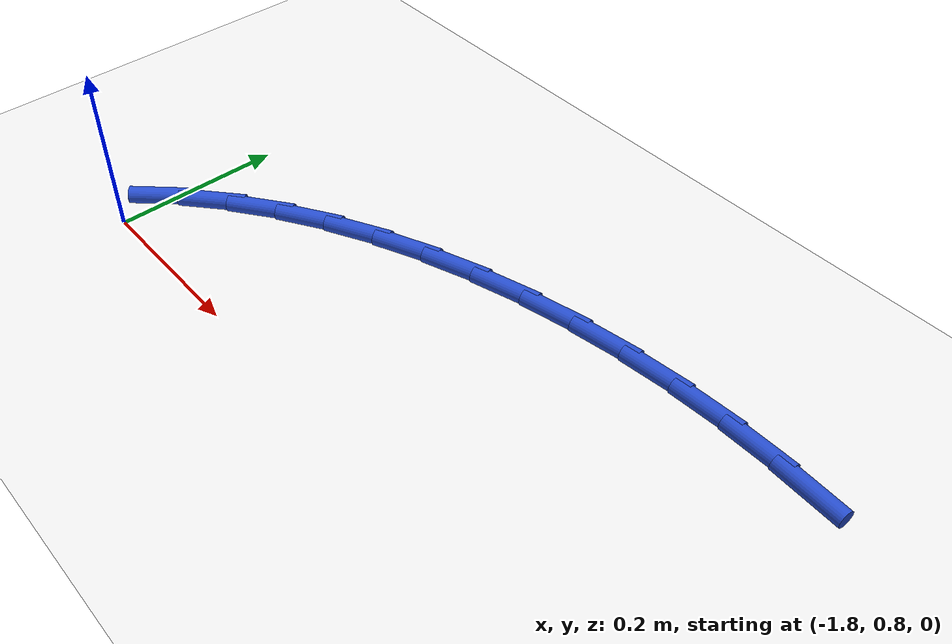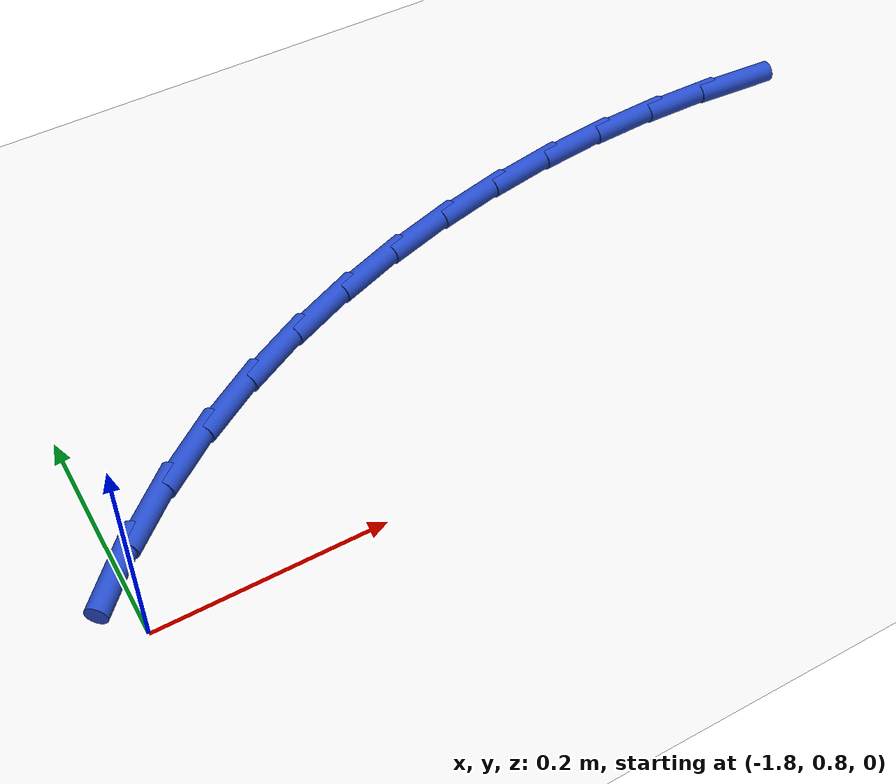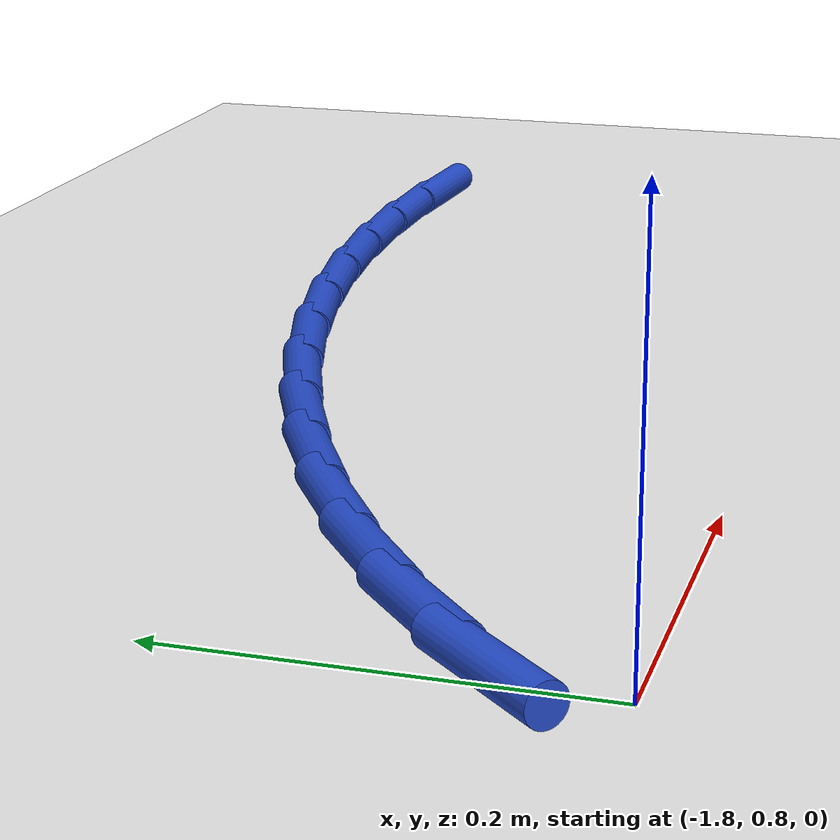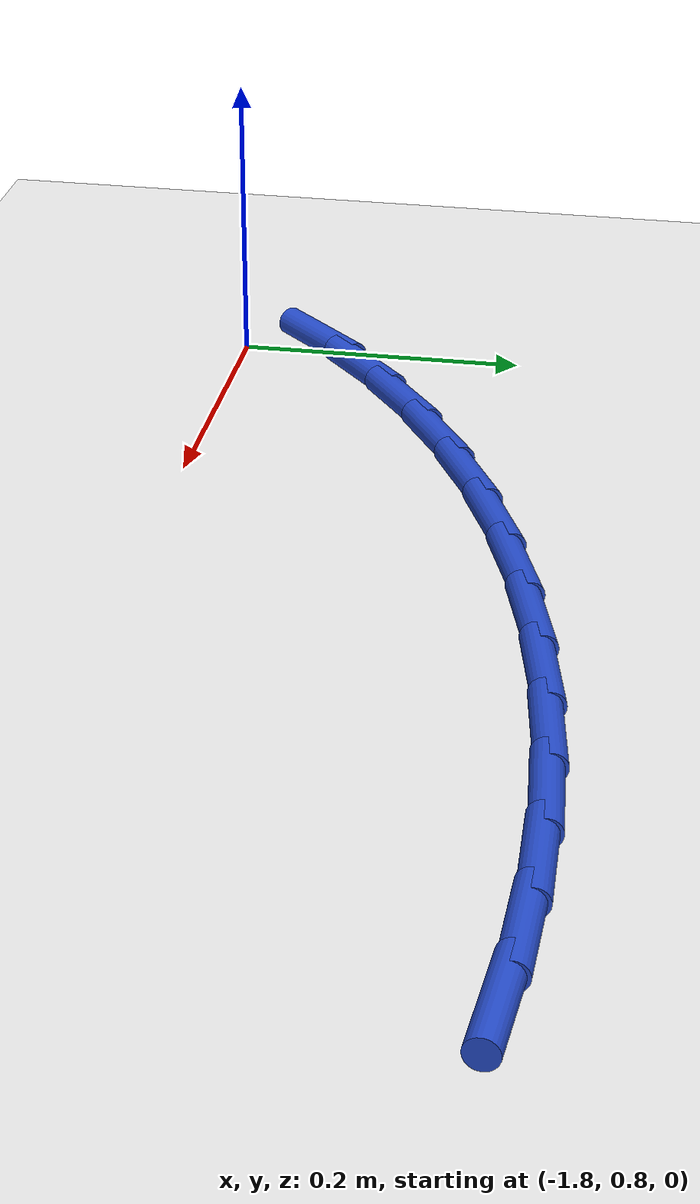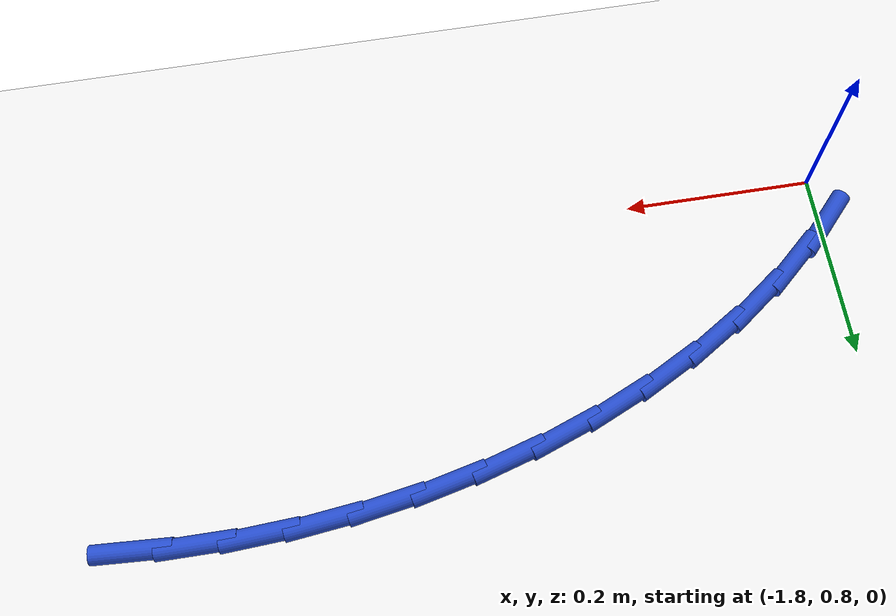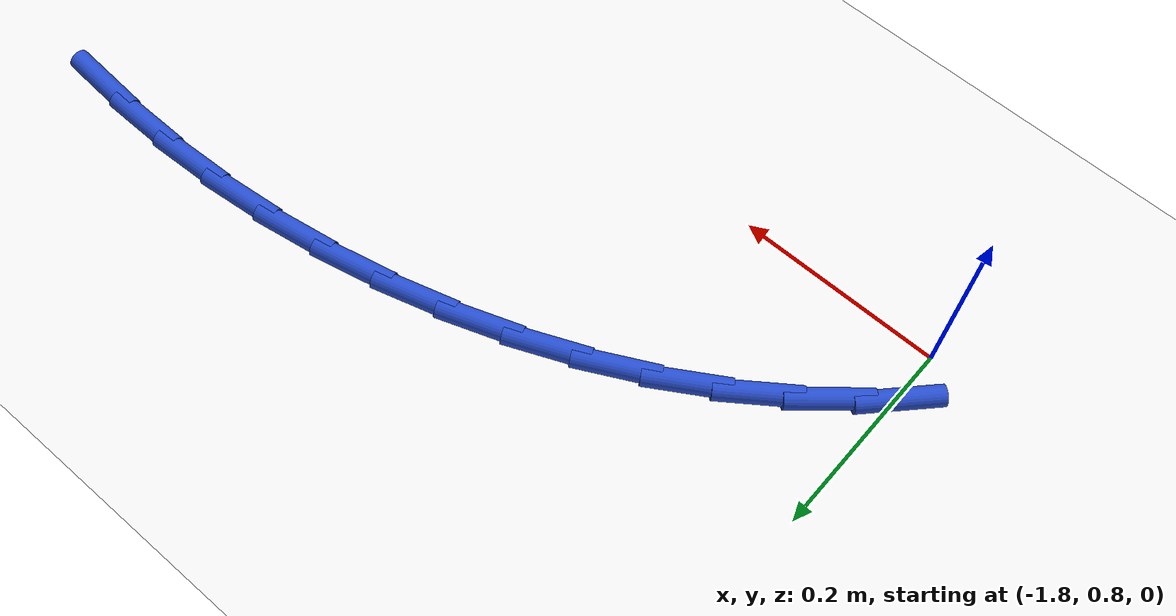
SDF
<sdf version="1.6">
 <world name="default">
  <model name="ground_plane">
   <static>1</static>
   <link name="link">
    <collision name="collision">
     <geometry><plane><normal>0 0 1</normal><size>100 100</size></plane></geometry>
     <surface><friction><ode><mu>100</mu><mu2>50</mu2></ode></friction></surface>
    </collision>
    <visual name="visual">
     <cast_shadows>0</cast_shadows>
     <geometry><plane><normal>0 0 1</normal><size>100 100</size></plane></geometry>
     <material>
      <script><uri>file://media/materials/scripts/gazebo.material</uri><name>Gazebo/WhiteGlow</name></script>
     </material>
    </visual>
   </link>
  </model>
  <model name="line">
   <link name="link_27">
    <pose>-1.0543961393596766 1.0871631700197786 0.01 0 1.57 -0.06469499430265076</pose>
    <collision name="collision">
     <geometry><cylinder><radius>0.01</radius><length>0.08</length></cylinder></geometry>
    </collision>
    <visual name="visual">
     <material>
      <script><name>Gazebo/Blue</name><uri>file://media/materials/scripts/gazebo.material</uri></script>
     </material>
     <geometry><cylinder><radius>0.01</radius><length>0.08</length></cylinder></geometry>
    </visual>
   </link>
   <link name="link_28">
    <pose>-1.115554445822121 1.0911253356561639 0.01 0 1.57 -0.007308234436366493</pose>
    <collision name="collision">
     <geometry><cylinder><radius>0.01</radius><length>0.08</length></cylinder></geometry>
    </collision>
    <visual name="visual">
     <material>
      <script><name>Gazebo/Blue</name><uri>file://media/materials/scripts/gazebo.material</uri></script>
     </material>
     <geometry><cylinder><radius>0.01</radius><length>0.08</length></cylinder></geometry>
    </visual>
   </link>
   <link name="link_29">
    <pose>-1.1772535436696647 1.0915762551556885 0.01 0 1.57 0.050848026139873374</pose>
    <collision name="collision">
     <geometry><cylinder><radius>0.01</radius><length>0.08</length></cylinder></geometry>
    </collision>
    <visual name="visual">
     <material>
      <script><name>Gazebo/Blue</name><uri>file://media/materials/scripts/gazebo.material</uri></script>
     </material>
     <geometry><cylinder><radius>0.01</radius><length>0.08</length></cylinder></geometry>
    </visual>
   </link>
   <link name="link_30">
    <pose>-1.2394314234702248 1.0884119050627326 0.01 0 1.57 0.10914098515828385</pose>
    <collision name="collision">
     <geometry><cylinder><radius>0.01</radius><length>0.08</length></cylinder></geometry>
    </collision>
    <visual name="visual">
     <material>
      <script><name>Gazebo/Blue</name><uri>file://media/materials/scripts/gazebo.material</uri></script>
     </material>
     <geometry><cylinder><radius>0.01</radius><length>0.08</length></cylinder></geometry>
    </visual>
   </link>
   <link name="link_31">
    <pose>-1.3018887793997487 1.0815680520027953 0.01 0 1.57 0.16726762725952216</pose>
    <collision name="collision">
     <geometry><cylinder><radius>0.01</radius><length>0.08</length></cylinder></geometry>
    </collision>
    <visual name="visual">
     <material>
      <script><name>Gazebo/Blue</name><uri>file://media/materials/scripts/gazebo.material</uri></script>
     </material>
     <geometry><cylinder><radius>0.01</radius><length>0.08</length></cylinder></geometry>
    </visual>
   </link>
   <link name="link_32">
    <pose>-1.3641913210270897 1.0710485638562157 0.01 0 1.57 0.22600351538794017</pose>
    <collision name="collision">
     <geometry><cylinder><radius>0.01</radius><length>0.08</length></cylinder></geometry>
    </collision>
    <visual name="visual">
     <material>
      <script><name>Gazebo/Blue</name><uri>file://media/materials/scripts/gazebo.material</uri></script>
     </material>
     <geometry><cylinder><radius>0.01</radius><length>0.08</length></cylinder></geometry>
    </visual>
   </link>
   <link name="link_33">
    <pose>-1.4258817100783816 1.0568639880345154 0.01 0 1.57 0.28619476149432976</pose>
    <collision name="collision">
     <geometry><cylinder><radius>0.01</radius><length>0.08</length></cylinder></geometry>
    </collision>
    <visual name="visual">
     <material>
      <script><name>Gazebo/Blue</name><uri>file://media/materials/scripts/gazebo.material</uri></script>
     </material>
     <geometry><cylinder><radius>0.01</radius><length>0.08</length></cylinder></geometry>
    </visual>
   </link>
   <link name="link_34">
    <pose>-1.4865026082797592 1.0390248719492157 0.01 0 1.57 0.3486866547169218</pose>
    <collision name="collision">
     <geometry><cylinder><radius>0.01</radius><length>0.08</length></cylinder></geometry>
    </collision>
    <visual name="visual">
     <material>
      <script><name>Gazebo/Blue</name><uri>file://media/materials/scripts/gazebo.material</uri></script>
     </material>
     <geometry><cylinder><radius>0.01</radius><length>0.08</length></cylinder></geometry>
    </visual>
   </link>
   <link name="link_35">
    <pose>-1.545596677357356 1.0175417630118382 0.01 0 1.57 0.41433372089004167</pose>
    <collision name="collision">
     <geometry><cylinder><radius>0.01</radius><length>0.08</length></cylinder></geometry>
    </collision>
    <visual name="visual">
     <material>
      <script><name>Gazebo/Blue</name><uri>file://media/materials/scripts/gazebo.material</uri></script>
     </material>
     <geometry><cylinder><radius>0.01</radius><length>0.08</length></cylinder></geometry>
    </visual>
   </link>
   <link name="link_36">
    <pose>-1.6027065790373056 0.9924252086339042 0.01 0 1.57 0.48399955851389753</pose>
    <collision name="collision">
     <geometry><cylinder><radius>0.01</radius><length>0.08</length></cylinder></geometry>
    </collision>
    <visual name="visual">
     <material>
      <script><name>Gazebo/Blue</name><uri>file://media/materials/scripts/gazebo.material</uri></script>
     </material>
     <geometry><cylinder><radius>0.01</radius><length>0.08</length></cylinder></geometry>
    </visual>
   </link>
   <link name="link_37">
    <pose>-1.657374975045743 0.9636857562269348 0.01 0 1.57 0.55854143163779</pose>
    <collision name="collision">
     <geometry><cylinder><radius>0.01</radius><length>0.08</length></cylinder></geometry>
    </collision>
    <visual name="visual">
     <material>
      <script><name>Gazebo/Blue</name><uri>file://media/materials/scripts/gazebo.material</uri></script>
     </material>
     <geometry><cylinder><radius>0.01</radius><length>0.08</length></cylinder></geometry>
    </visual>
   </link>
   <link name="link_38">
    <pose>-1.7091445271088017 0.9313339532024519 0.01 0 1.57 0.638772729430446</pose>
    <collision name="collision">
     <geometry><cylinder><radius>0.01</radius><length>0.08</length></cylinder></geometry>
    </collision>
    <visual name="visual">
     <material>
      <script><name>Gazebo/Blue</name><uri>file://media/materials/scripts/gazebo.material</uri></script>
     </material>
     <geometry><cylinder><radius>0.01</radius><length>0.08</length></cylinder></geometry>
    </visual>
   </link>
   <link name="link_39">
    <pose>-1.7575578969526164 0.8953803469719768 0.01 0 1.57 0.7253953511805705</pose>
    <collision name="collision">
     <geometry><cylinder><radius>0.01</radius><length>0.08</length></cylinder></geometry>
    </collision>
    <visual name="visual">
     <material>
      <script><name>Gazebo/Blue</name><uri>file://media/materials/scripts/gazebo.material</uri></script>
     </material>
     <geometry><cylinder><radius>0.01</radius><length>0.08</length></cylinder></geometry>
    </visual>
   </link>
   <link name="link_40">
    <pose>-1.802157746303321 0.8558354849470307 0.01 0 1.57 0.8185028273617942</pose>
    <collision name="collision">
     <geometry><cylinder><radius>0.01</radius><length>0.08</length></cylinder></geometry>
    </collision>
    <visual name="visual">
     <material>
      <script><name>Gazebo/Blue</name><uri>file://media/materials/scripts/gazebo.material</uri></script>
     </material>
     <geometry><cylinder><radius>0.01</radius><length>0.08</length></cylinder></geometry>
    </visual>
   </link>
  </model>
 </world>
</sdf>
